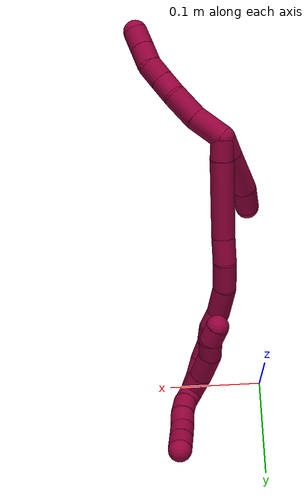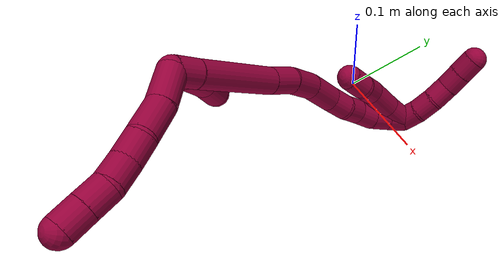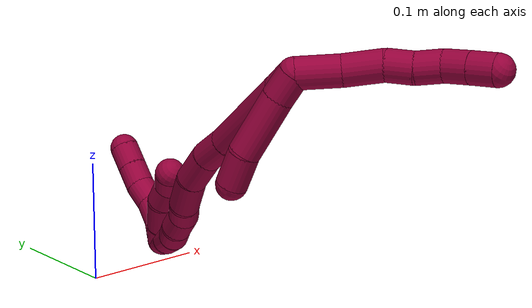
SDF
<sdf version="1.7">
 <world name="default">
  <model name="8">
   <static>0</static>
   <link name="8">
    <collision name="collision-cylinder-e_1_2_8">
     <pose>0.010857 -0.010794 0.008256 0.917858 0.674126 0.342911</pose>
     <geometry><cylinder><radius>0.0125</radius><length>0.034787</length></cylinder></geometry>
     <surface>
      <friction><ode><mu>1.16</mu><mu2>1.16</mu2><slip1>0</slip1><slip2>0</slip2></ode></friction>
      <contact><ode><kp>1e+06</kp><kd>1</kd><max_vel>0</max_vel><min_depth>0.001</min_depth></ode></contact>
     </surface>
    </collision>
    <visual name="visual-cylinder-e_1_2_8">
     <pose>0.010857 -0.010794 0.008256 0.917858 0.674126 0.342911</pose>
     <geometry><cylinder><radius>0.0125</radius><length>0.034787</length></cylinder></geometry>
     <material><ambient>0.584314 0 0.227451 1</ambient></material>
    </visual>
    <collision name="collision-cylinder-e_2_8_9">
     <pose>0.029749 -0.030881 0.02639 0.754901 0.534785 0.216374</pose>
     <geometry><cylinder><radius>0.0125</radius><length>0.031528</length></cylinder></geometry>
     <surface>
      <friction><ode><mu>1.16</mu><mu2>1.16</mu2><slip1>0</slip1><slip2>0</slip2></ode></friction>
      <contact><ode><kp>1e+06</kp><kd>1</kd><max_vel>0</max_vel><min_depth>0.001</min_depth></ode></contact>
     </surface>
    </collision>
    <visual name="visual-cylinder-e_2_8_9">
     <pose>0.029749 -0.030881 0.02639 0.754901 0.534785 0.216374</pose>
     <geometry><cylinder><radius>0.0125</radius><length>0.031528</length></cylinder></geometry>
     <material><ambient>0.584314 0 0.227451 1</ambient></material>
    </visual>
    <collision name="collision-cylinder-e_3_9_10">
     <pose>0.041706 -0.048366 0.042127 0.949953 0.371402 0.192619</pose>
     <geometry><cylinder><radius>0.0125</radius><length>0.021616</length></cylinder></geometry>
     <surface>
      <friction><ode><mu>1.16</mu><mu2>1.16</mu2><slip1>0</slip1><slip2>0</slip2></ode></friction>
      <contact><ode><kp>1e+06</kp><kd>1</kd><max_vel>0</max_vel><min_depth>0.001</min_depth></ode></contact>
     </surface>
    </collision>
    <visual name="visual-cylinder-e_3_9_10">
     <pose>0.041706 -0.048366 0.042127 0.949953 0.371402 0.192619</pose>
     <geometry><cylinder><radius>0.0125</radius><length>0.021616</length></cylinder></geometry>
     <material><ambient>0.584314 0 0.227451 1</ambient></material>
    </visual>
    <collision name="collision-cylinder-e_4_10_11">
     <pose>0.05031 -0.063257 0.054842 0.773747 0.454309 0.187785</pose>
     <geometry><cylinder><radius>0.0125</radius><length>0.021337</length></cylinder></geometry>
     <surface>
      <friction><ode><mu>1.16</mu><mu2>1.16</mu2><slip1>0</slip1><slip2>0</slip2></ode></friction>
      <contact><ode><kp>1e+06</kp><kd>1</kd><max_vel>0</max_vel><min_depth>0.001</min_depth></ode></contact>
     </surface>
    </collision>
    <visual name="visual-cylinder-e_4_10_11">
     <pose>0.05031 -0.063257 0.054842 0.773747 0.454309 0.187785</pose>
     <geometry><cylinder><radius>0.0125</radius><length>0.021337</length></cylinder></geometry>
     <material><ambient>0.584314 0 0.227451 1</ambient></material>
    </visual>
    <collision name="collision-cylinder-e_5_11_12">
     <pose>0.056479 -0.077172 0.068746 0.797298 0.146419 0.061763</pose>
     <geometry><cylinder><radius>0.0125</radius><length>0.02039</length></cylinder></geometry>
     <surface>
      <friction><ode><mu>1.16</mu><mu2>1.16</mu2><slip1>0</slip1><slip2>0</slip2></ode></friction>
      <contact><ode><kp>1e+06</kp><kd>1</kd><max_vel>0</max_vel><min_depth>0.001</min_depth></ode></contact>
     </surface>
    </collision>
    <visual name="visual-cylinder-e_5_11_12">
     <pose>0.056479 -0.077172 0.068746 0.797298 0.146419 0.061763</pose>
     <geometry><cylinder><radius>0.0125</radius><length>0.02039</length></cylinder></geometry>
     <material><ambient>0.584314 0 0.227451 1</ambient></material>
    </visual>
    <collision name="collision-cylinder-e_6_12_6">
     <pose>0.059422 -0.091712 0.082698 0.814697 0.143598 0.062047</pose>
     <geometry><cylinder><radius>0.0125</radius><length>0.020342</length></cylinder></geometry>
     <surface>
      <friction><ode><mu>1.16</mu><mu2>1.16</mu2><slip1>0</slip1><slip2>0</slip2></ode></friction>
      <contact><ode><kp>1e+06</kp><kd>1</kd><max_vel>0</max_vel><min_depth>0.001</min_depth></ode></contact>
     </surface>
    </collision>
    <visual name="visual-cylinder-e_6_12_6">
     <pose>0.059422 -0.091712 0.082698 0.814697 0.143598 0.062047</pose>
     <geometry><cylinder><radius>0.0125</radius><length>0.020342</length></cylinder></geometry>
     <material><ambient>0.584314 0 0.227451 1</ambient></material>
    </visual>
    <collision name="collision-cylinder-e_1_2_13">
     <pose>-0.004419 -0.00191 -0.010061 2.95402 -0.407339 -2.28687</pose>
     <geometry><cylinder><radius>0.0125</radius><length>0.022307</length></cylinder></geometry>
     <surface>
      <friction><ode><mu>1.16</mu><mu2>1.16</mu2><slip1>0</slip1><slip2>0</slip2></ode></friction>
      <contact><ode><kp>1e+06</kp><kd>1</kd><max_vel>0</max_vel><min_depth>0.001</min_depth></ode></contact>
     </surface>
    </collision>
    <visual name="visual-cylinder-e_1_2_13">
     <pose>-0.004419 -0.00191 -0.010061 2.95402 -0.407339 -2.28687</pose>
     <geometry><cylinder><radius>0.0125</radius><length>0.022307</length></cylinder></geometry>
     <material><ambient>0.584314 0 0.227451 1</ambient></material>
    </visual>
    <collision name="collision-cylinder-e_2_13_14">
     <pose>-0.01945 -0.009376 -0.041883 2.89156 -0.441426 -2.12045</pose>
     <geometry><cylinder><radius>0.0125</radius><length>0.049681</length></cylinder></geometry>
     <surface>
      <friction><ode><mu>1.16</mu><mu2>1.16</mu2><slip1>0</slip1><slip2>0</slip2></ode></friction>
      <contact><ode><kp>1e+06</kp><kd>1</kd><max_vel>0</max_vel><min_depth>0.001</min_depth></ode></contact>
     </surface>
    </collision>
    <visual name="visual-cylinder-e_2_13_14">
     <pose>-0.01945 -0.009376 -0.041883 2.89156 -0.441426 -2.12045</pose>
     <geometry><cylinder><radius>0.0125</radius><length>0.049681</length></cylinder></geometry>
     <material><ambient>0.584314 0 0.227451 1</ambient></material>
    </visual>
    <collision name="collision-cylinder-e_3_14_5">
     <pose>-0.033643 -0.019553 -0.076373 2.79348 -0.258549 -1.27327</pose>
     <geometry><cylinder><radius>0.0125</radius><length>0.028012</length></cylinder></geometry>
     <surface>
      <friction><ode><mu>1.16</mu><mu2>1.16</mu2><slip1>0</slip1><slip2>0</slip2></ode></friction>
      <contact><ode><kp>1e+06</kp><kd>1</kd><max_vel>0</max_vel><min_depth>0.001</min_depth></ode></contact>
     </surface>
    </collision>
    <visual name="visual-cylinder-e_3_14_5">
     <pose>-0.033643 -0.019553 -0.076373 2.79348 -0.258549 -1.27327</pose>
     <geometry><cylinder><radius>0.0125</radius><length>0.028012</length></cylinder></geometry>
     <material><ambient>0.584314 0 0.227451 1</ambient></material>
    </visual>
    <collision name="collision-cylinder-e_1_2_15">
     <pose>0.000775 0.000821 -0.011309 -3.06908 0.068239 -1.51011</pose>
     <geometry><cylinder><radius>0.0125</radius><length>0.02273</length></cylinder></geometry>
     <surface>
      <friction><ode><mu>1.16</mu><mu2>1.16</mu2><slip1>0</slip1><slip2>0</slip2></ode></friction>
      <contact><ode><kp>1e+06</kp><kd>1</kd><max_vel>0</max_vel><min_depth>0.001</min_depth></ode></contact>
     </surface>
    </collision>
    <visual name="visual-cylinder-e_1_2_15">
     <pose>0.000775 0.000821 -0.011309 -3.06908 0.068239 -1.51011</pose>
     <geometry><cylinder><radius>0.0125</radius><length>0.02273</length></cylinder></geometry>
     <material><ambient>0.584314 0 0.227451 1</ambient></material>
    </visual>
    <collision name="collision-cylinder-e_2_15_16">
     <pose>0.001657 0.00498 -0.064113 -3.06134 0.00257 -0.064001</pose>
     <geometry><cylinder><radius>0.0125</radius><length>0.083259</length></cylinder></geometry>
     <surface>
      <friction><ode><mu>1.16</mu><mu2>1.16</mu2><slip1>0</slip1><slip2>0</slip2></ode></friction>
      <contact><ode><kp>1e+06</kp><kd>1</kd><max_vel>0</max_vel><min_depth>0.001</min_depth></ode></contact>
     </surface>
    </collision>
    <visual name="visual-cylinder-e_2_15_16">
     <pose>0.001657 0.00498 -0.064113 -3.06134 0.00257 -0.064001</pose>
     <geometry><cylinder><radius>0.0125</radius><length>0.083259</length></cylinder></geometry>
     <material><ambient>0.584314 0 0.227451 1</ambient></material>
    </visual>
    <collision name="collision-cylinder-e_3_16_17">
     <pose>0.001641 0.010525 -0.119254 -2.9812 -0.008926 0.110948</pose>
     <geometry><cylinder><radius>0.0125</radius><length>0.027647</length></cylinder></geometry>
     <surface>
      <friction><ode><mu>1.16</mu><mu2>1.16</mu2><slip1>0</slip1><slip2>0</slip2></ode></friction>
      <contact><ode><kp>1e+06</kp><kd>1</kd><max_vel>0</max_vel><min_depth>0.001</min_depth></ode></contact>
     </surface>
    </collision>
    <visual name="visual-cylinder-e_3_16_17">
     <pose>0.001641 0.010525 -0.119254 -2.9812 -0.008926 0.110948</pose>
     <geometry><cylinder><radius>0.0125</radius><length>0.027647</length></cylinder></geometry>
     <material><ambient>0.584314 0 0.227451 1</ambient></material>
    </visual>
    <collision name="collision-cylinder-e_4_17_18">
     <pose>0.001155 0.011947 -0.148458 3.09113 -0.023236 -0.862912</pose>
     <geometry><cylinder><radius>0.0125</radius><length>0.031165</length></cylinder></geometry>
     <surface>
      <friction><ode><mu>1.16</mu><mu2>1.16</mu2><slip1>0</slip1><slip2>0</slip2></ode></friction>
      <contact><ode><kp>1e+06</kp><kd>1</kd><max_vel>0</max_vel><min_depth>0.001</min_depth></ode></contact>
     </surface>
    </collision>
    <visual name="visual-cylinder-e_4_17_18">
     <pose>0.001155 0.011947 -0.148458 3.09113 -0.023236 -0.862912</pose>
     <geometry><cylinder><radius>0.0125</radius><length>0.031165</length></cylinder></geometry>
     <material><ambient>0.584314 0 0.227451 1</ambient></material>
    </visual>
    <collision name="collision-cylinder-e_5_18_19">
     <pose>0.002951 0.007578 -0.180291 2.92492 0.128768 1.07021</pose>
     <geometry><cylinder><radius>0.0125</radius><length>0.033608</length></cylinder></geometry>
     <surface>
      <friction><ode><mu>1.16</mu><mu2>1.16</mu2><slip1>0</slip1><slip2>0</slip2></ode></friction>
      <contact><ode><kp>1e+06</kp><kd>1</kd><max_vel>0</max_vel><min_depth>0.001</min_depth></ode></contact>
     </surface>
    </collision>
    <visual name="visual-cylinder-e_5_18_19">
     <pose>0.002951 0.007578 -0.180291 2.92492 0.128768 1.07021</pose>
     <geometry><cylinder><radius>0.0125</radius><length>0.033608</length></cylinder></geometry>
     <material><ambient>0.584314 0 0.227451 1</ambient></material>
    </visual>
    <collision name="collision-cylinder-e_6_19_20">
     <pose>0.008876 0.002147 -0.206151 2.95106 0.368326 2.19364</pose>
     <geometry><cylinder><radius>0.0125</radius><length>0.020925</length></cylinder></geometry>
     <surface>
      <friction><ode><mu>1.16</mu><mu2>1.16</mu2><slip1>0</slip1><slip2>0</slip2></ode></friction>
      <contact><ode><kp>1e+06</kp><kd>1</kd><max_vel>0</max_vel><min_depth>0.001</min_depth></ode></contact>
     </surface>
    </collision>
    <visual name="visual-cylinder-e_6_19_20">
     <pose>0.008876 0.002147 -0.206151 2.95106 0.368326 2.19364</pose>
     <geometry><cylinder><radius>0.0125</radius><length>0.020925</length></cylinder></geometry>
     <material><ambient>0.584314 0 0.227451 1</ambient></material>
    </visual>
    <collision name="collision-cylinder-e_7_20_21">
     <pose>0.013688 -0.00034 -0.225879 3.07871 0.102409 2.04076</pose>
     <geometry><cylinder><radius>0.0125</radius><length>0.020436</length></cylinder></geometry>
     <surface>
      <friction><ode><mu>1.16</mu><mu2>1.16</mu2><slip1>0</slip1><slip2>0</slip2></ode></friction>
      <contact><ode><kp>1e+06</kp><kd>1</kd><max_vel>0</max_vel><min_depth>0.001</min_depth></ode></contact>
     </surface>
    </collision>
    <visual name="visual-cylinder-e_7_20_21">
     <pose>0.013688 -0.00034 -0.225879 3.07871 0.102409 2.04076</pose>
     <geometry><cylinder><radius>0.0125</radius><length>0.020436</length></cylinder></geometry>
     <material><ambient>0.584314 0 0.227451 1</ambient></material>
    </visual>
    <collision name="collision-cylinder-e_8_21_22">
     <pose>0.018154 -0.001542 -0.245506 3.08223 0.345762 2.80479</pose>
     <geometry><cylinder><radius>0.0125</radius><length>0.020192</length></cylinder></geometry>
     <surface>
      <friction><ode><mu>1.16</mu><mu2>1.16</mu2><slip1>0</slip1><slip2>0</slip2></ode></friction>
      <contact><ode><kp>1e+06</kp><kd>1</kd><max_vel>0</max_vel><min_depth>0.001</min_depth></ode></contact>
     </surface>
    </collision>
    <visual name="visual-cylinder-e_8_21_22">
     <pose>0.018154 -0.001542 -0.245506 3.08223 0.345762 2.80479</pose>
     <geometry><cylinder><radius>0.0125</radius><length>0.020192</length></cylinder></geometry>
     <material><ambient>0.584314 0 0.227451 1</ambient></material>
    </visual>
    <collision name="collision-cylinder-e_9_22_23">
     <pose>0.025007 -0.000242 -0.2642 -2.94196 0.350078 -2.11106</pose>
     <geometry><cylinder><radius>0.0125</radius><length>0.020011</length></cylinder></geometry>
     <surface>
      <friction><ode><mu>1.16</mu><mu2>1.16</mu2><slip1>0</slip1><slip2>0</slip2></ode></friction>
      <contact><ode><kp>1e+06</kp><kd>1</kd><max_vel>0</max_vel><min_depth>0.001</min_depth></ode></contact>
     </surface>
    </collision>
    <visual name="visual-cylinder-e_9_22_23">
     <pose>0.025007 -0.000242 -0.2642 -2.94196 0.350078 -2.11106</pose>
     <geometry><cylinder><radius>0.0125</radius><length>0.020011</length></cylinder></geometry>
     <material><ambient>0.584314 0 0.227451 1</ambient></material>
    </visual>
    <collision name="collision-cylinder-e_10_23_1">
     <pose>0.032981 0.004123 -0.281978 -2.85748 0.470782 -2.06617</pose>
     <geometry><cylinder><radius>0.0125</radius><length>0.020027</length></cylinder></geometry>
     <surface>
      <friction><ode><mu>1.16</mu><mu2>1.16</mu2><slip1>0</slip1><slip2>0</slip2></ode></friction>
      <contact><ode><kp>1e+06</kp><kd>1</kd><max_vel>0</max_vel><min_depth>0.001</min_depth></ode></contact>
     </surface>
    </collision>
    <visual name="visual-cylinder-e_10_23_1">
     <pose>0.032981 0.004123 -0.281978 -2.85748 0.470782 -2.06617</pose>
     <geometry><cylinder><radius>0.0125</radius><length>0.020027</length></cylinder></geometry>
     <material><ambient>0.584314 0 0.227451 1</ambient></material>
    </visual>
    <collision name="collision-cylinder-e_1_1_24">
     <pose>0.033028 0.010524 -0.277858 -0.298228 -0.326529 0.049485</pose>
     <geometry><cylinder><radius>0.0125</radius><length>0.028024</length></cylinder></geometry>
     <surface>
      <friction><ode><mu>1.16</mu><mu2>1.16</mu2><slip1>0</slip1><slip2>0</slip2></ode></friction>
      <contact><ode><kp>1e+06</kp><kd>1</kd><max_vel>0</max_vel><min_depth>0.001</min_depth></ode></contact>
     </surface>
    </collision>
    <visual name="visual-cylinder-e_1_1_24">
     <pose>0.033028 0.010524 -0.277858 -0.298228 -0.326529 0.049485</pose>
     <geometry><cylinder><radius>0.0125</radius><length>0.028024</length></cylinder></geometry>
     <material><ambient>0.584314 0 0.227451 1</ambient></material>
    </visual>
    <collision name="collision-cylinder-e_2_24_25">
     <pose>0.025039 0.019285 -0.250432 -0.318544 -0.221459 0.035716</pose>
     <geometry><cylinder><radius>0.0125</radius><length>0.031819</length></cylinder></geometry>
     <surface>
      <friction><ode><mu>1.16</mu><mu2>1.16</mu2><slip1>0</slip1><slip2>0</slip2></ode></friction>
      <contact><ode><kp>1e+06</kp><kd>1</kd><max_vel>0</max_vel><min_depth>0.001</min_depth></ode></contact>
     </surface>
    </collision>
    <visual name="visual-cylinder-e_2_24_25">
     <pose>0.025039 0.019285 -0.250432 -0.318544 -0.221459 0.035716</pose>
     <geometry><cylinder><radius>0.0125</radius><length>0.031819</length></cylinder></geometry>
     <material><ambient>0.584314 0 0.227451 1</ambient></material>
    </visual>
    <collision name="collision-cylinder-e_3_25_26">
     <pose>0.02183 0.025827 -0.225791 -0.16819 0.028383 -0.002393</pose>
     <geometry><cylinder><radius>0.0125</radius><length>0.020095</length></cylinder></geometry>
     <surface>
      <friction><ode><mu>1.16</mu><mu2>1.16</mu2><slip1>0</slip1><slip2>0</slip2></ode></friction>
      <contact><ode><kp>1e+06</kp><kd>1</kd><max_vel>0</max_vel><min_depth>0.001</min_depth></ode></contact>
     </surface>
    </collision>
    <visual name="visual-cylinder-e_3_25_26">
     <pose>0.02183 0.025827 -0.225791 -0.16819 0.028383 -0.002393</pose>
     <geometry><cylinder><radius>0.0125</radius><length>0.020095</length></cylinder></geometry>
     <material><ambient>0.584314 0 0.227451 1</ambient></material>
    </visual>
    <collision name="collision-cylinder-e_4_26_4">
     <pose>0.019107 0.029756 -0.206587 -0.23718 -0.304573 0.036569</pose>
     <geometry><cylinder><radius>0.0125</radius><length>0.020062</length></cylinder></geometry>
     <surface>
      <friction><ode><mu>1.16</mu><mu2>1.16</mu2><slip1>0</slip1><slip2>0</slip2></ode></friction>
      <contact><ode><kp>1e+06</kp><kd>1</kd><max_vel>0</max_vel><min_depth>0.001</min_depth></ode></contact>
     </surface>
    </collision>
    <visual name="visual-cylinder-e_4_26_4">
     <pose>0.019107 0.029756 -0.206587 -0.23718 -0.304573 0.036569</pose>
     <geometry><cylinder><radius>0.0125</radius><length>0.020062</length></cylinder></geometry>
     <material><ambient>0.584314 0 0.227451 1</ambient></material>
    </visual>
    <collision name="collision-cylinder-e_1_1_27">
     <pose>0.043616 0.01455 -0.290801 -1.60321 0.655211 -0.67522</pose>
     <geometry><cylinder><radius>0.0125</radius><length>0.02</length></cylinder></geometry>
     <surface>
      <friction><ode><mu>1.16</mu><mu2>1.16</mu2><slip1>0</slip1><slip2>0</slip2></ode></friction>
      <contact><ode><kp>1e+06</kp><kd>1</kd><max_vel>0</max_vel><min_depth>0.001</min_depth></ode></contact>
     </surface>
    </collision>
    <visual name="visual-cylinder-e_1_1_27">
     <pose>0.043616 0.01455 -0.290801 -1.60321 0.655211 -0.67522</pose>
     <geometry><cylinder><radius>0.0125</radius><length>0.02</length></cylinder></geometry>
     <material><ambient>0.584314 0 0.227451 1</ambient></material>
    </visual>
    <collision name="collision-cylinder-e_2_27_28">
     <pose>0.054215 0.031353 -0.291993 -1.67568 0.467383 -0.516998</pose>
     <geometry><cylinder><radius>0.0125</radius><length>0.02</length></cylinder></geometry>
     <surface>
      <friction><ode><mu>1.16</mu><mu2>1.16</mu2><slip1>0</slip1><slip2>0</slip2></ode></friction>
      <contact><ode><kp>1e+06</kp><kd>1</kd><max_vel>0</max_vel><min_depth>0.001</min_depth></ode></contact>
     </surface>
    </collision>
    <visual name="visual-cylinder-e_2_27_28">
     <pose>0.054215 0.031353 -0.291993 -1.67568 0.467383 -0.516998</pose>
     <geometry><cylinder><radius>0.0125</radius><length>0.02</length></cylinder></geometry>
     <material><ambient>0.584314 0 0.227451 1</ambient></material>
    </visual>
    <collision name="collision-cylinder-e_3_28_29">
     <pose>0.061802 0.04953 -0.29494 -1.78395 0.313246 -0.386619</pose>
     <geometry><cylinder><radius>0.0125</radius><length>0.02</length></cylinder></geometry>
     <surface>
      <friction><ode><mu>1.16</mu><mu2>1.16</mu2><slip1>0</slip1><slip2>0</slip2></ode></friction>
      <contact><ode><kp>1e+06</kp><kd>1</kd><max_vel>0</max_vel><min_depth>0.001</min_depth></ode></contact>
     </surface>
    </collision>
    <visual name="visual-cylinder-e_3_28_29">
     <pose>0.061802 0.04953 -0.29494 -1.78395 0.313246 -0.386619</pose>
     <geometry><cylinder><radius>0.0125</radius><length>0.02</length></cylinder></geometry>
     <material><ambient>0.584314 0 0.227451 1</ambient></material>
    </visual>
    <collision name="collision-cylinder-e_4_29_30">
     <pose>0.06851 0.068145 -0.296777 -1.55194 0.371212 -0.364431</pose>
     <geometry><cylinder><radius>0.0125</radius><length>0.02</length></cylinder></geometry>
     <surface>
      <friction><ode><mu>1.16</mu><mu2>1.16</mu2><slip1>0</slip1><slip2>0</slip2></ode></friction>
      <contact><ode><kp>1e+06</kp><kd>1</kd><max_vel>0</max_vel><min_depth>0.001</min_depth></ode></contact>
     </surface>
    </collision>
    <visual name="visual-cylinder-e_4_29_30">
     <pose>0.06851 0.068145 -0.296777 -1.55194 0.371212 -0.364431</pose>
     <geometry><cylinder><radius>0.0125</radius><length>0.02</length></cylinder></geometry>
     <material><ambient>0.584314 0 0.227451 1</ambient></material>
    </visual>
    <collision name="collision-cylinder-e_5_30_3">
     <pose>0.075779 0.086774 -0.296419 -1.55128 0.372629 -0.365587</pose>
     <geometry><cylinder><radius>0.0125</radius><length>0.02</length></cylinder></geometry>
     <surface>
      <friction><ode><mu>1.16</mu><mu2>1.16</mu2><slip1>0</slip1><slip2>0</slip2></ode></friction>
      <contact><ode><kp>1e+06</kp><kd>1</kd><max_vel>0</max_vel><min_depth>0.001</min_depth></ode></contact>
     </surface>
    </collision>
    <visual name="visual-cylinder-e_5_30_3">
     <pose>0.075779 0.086774 -0.296419 -1.55128 0.372629 -0.365587</pose>
     <geometry><cylinder><radius>0.0125</radius><length>0.02</length></cylinder></geometry>
     <material><ambient>0.584314 0 0.227451 1</ambient></material>
    </visual>
    <collision name="collision-sphere-3">
     <pose>0.079419 0.096086 -0.296237 0 -0 0</pose>
     <geometry><sphere><radius>0.0125</radius></sphere></geometry>
     <surface>
      <friction><ode><mu>1.16</mu><mu2>1.16</mu2><slip1>0</slip1><slip2>0</slip2></ode></friction>
      <contact><ode><kp>1e+06</kp><kd>1</kd><max_vel>0</max_vel><min_depth>0.001</min_depth></ode></contact>
     </surface>
    </collision>
    <visual name="visual-sphere-3">
     <pose>0.079419 0.096086 -0.296237 0 -0 0</pose>
     <geometry><sphere><radius>0.0125</radius></sphere></geometry>
     <material><ambient>0.584314 0 0.227451 1</ambient></material>
    </visual>
    <collision name="collision-sphere-30">
     <pose>0.072138 0.077462 -0.296601 0 -0 0</pose>
     <geometry><sphere><radius>0.0125</radius></sphere></geometry>
     <surface>
      <friction><ode><mu>1.16</mu><mu2>1.16</mu2><slip1>0</slip1><slip2>0</slip2></ode></friction>
      <contact><ode><kp>1e+06</kp><kd>1</kd><max_vel>0</max_vel><min_depth>0.001</min_depth></ode></contact>
     </surface>
    </collision>
    <visual name="visual-sphere-30">
     <pose>0.072138 0.077462 -0.296601 0 -0 0</pose>
     <geometry><sphere><radius>0.0125</radius></sphere></geometry>
     <material><ambient>0.584314 0 0.227451 1</ambient></material>
    </visual>
    <collision name="collision-sphere-29">
     <pose>0.064883 0.058828 -0.296952 0 -0 0</pose>
     <geometry><sphere><radius>0.0125</radius></sphere></geometry>
     <surface>
      <friction><ode><mu>1.16</mu><mu2>1.16</mu2><slip1>0</slip1><slip2>0</slip2></ode></friction>
      <contact><ode><kp>1e+06</kp><kd>1</kd><max_vel>0</max_vel><min_depth>0.001</min_depth></ode></contact>
     </surface>
    </collision>
    <visual name="visual-sphere-29">
     <pose>0.064883 0.058828 -0.296952 0 -0 0</pose>
     <geometry><sphere><radius>0.0125</radius></sphere></geometry>
     <material><ambient>0.584314 0 0.227451 1</ambient></material>
    </visual>
    <collision name="collision-sphere-28">
     <pose>0.05872 0.040232 -0.292927 0 -0 0</pose>
     <geometry><sphere><radius>0.0125</radius></sphere></geometry>
     <surface>
      <friction><ode><mu>1.16</mu><mu2>1.16</mu2><slip1>0</slip1><slip2>0</slip2></ode></friction>
      <contact><ode><kp>1e+06</kp><kd>1</kd><max_vel>0</max_vel><min_depth>0.001</min_depth></ode></contact>
     </surface>
    </collision>
    <visual name="visual-sphere-28">
     <pose>0.05872 0.040232 -0.292927 0 -0 0</pose>
     <geometry><sphere><radius>0.0125</radius></sphere></geometry>
     <material><ambient>0.584314 0 0.227451 1</ambient></material>
    </visual>
    <collision name="collision-sphere-27">
     <pose>0.049709 0.022475 -0.291058 0 -0 0</pose>
     <geometry><sphere><radius>0.0125</radius></sphere></geometry>
     <surface>
      <friction><ode><mu>1.16</mu><mu2>1.16</mu2><slip1>0</slip1><slip2>0</slip2></ode></friction>
      <contact><ode><kp>1e+06</kp><kd>1</kd><max_vel>0</max_vel><min_depth>0.001</min_depth></ode></contact>
     </surface>
    </collision>
    <visual name="visual-sphere-27">
     <pose>0.049709 0.022475 -0.291058 0 -0 0</pose>
     <geometry><sphere><radius>0.0125</radius></sphere></geometry>
     <material><ambient>0.584314 0 0.227451 1</ambient></material>
    </visual>
    <collision name="collision-sphere-4">
     <pose>0.016098 0.032005 -0.197286 0 -0 0</pose>
     <geometry><sphere><radius>0.0125</radius></sphere></geometry>
     <surface>
      <friction><ode><mu>1.16</mu><mu2>1.16</mu2><slip1>0</slip1><slip2>0</slip2></ode></friction>
      <contact><ode><kp>1e+06</kp><kd>1</kd><max_vel>0</max_vel><min_depth>0.001</min_depth></ode></contact>
     </surface>
    </collision>
    <visual name="visual-sphere-4">
     <pose>0.016098 0.032005 -0.197286 0 -0 0</pose>
     <geometry><sphere><radius>0.0125</radius></sphere></geometry>
     <material><ambient>0.584314 0 0.227451 1</ambient></material>
    </visual>
    <collision name="collision-sphere-26">
     <pose>0.022115 0.027508 -0.215889 0 -0 0</pose>
     <geometry><sphere><radius>0.0125</radius></sphere></geometry>
     <surface>
      <friction><ode><mu>1.16</mu><mu2>1.16</mu2><slip1>0</slip1><slip2>0</slip2></ode></friction>
      <contact><ode><kp>1e+06</kp><kd>1</kd><max_vel>0</max_vel><min_depth>0.001</min_depth></ode></contact>
     </surface>
    </collision>
    <visual name="visual-sphere-26">
     <pose>0.022115 0.027508 -0.215889 0 -0 0</pose>
     <geometry><sphere><radius>0.0125</radius></sphere></geometry>
     <material><ambient>0.584314 0 0.227451 1</ambient></material>
    </visual>
    <collision name="collision-sphere-25">
     <pose>0.021544 0.024145 -0.235692 0 -0 0</pose>
     <geometry><sphere><radius>0.0125</radius></sphere></geometry>
     <surface>
      <friction><ode><mu>1.16</mu><mu2>1.16</mu2><slip1>0</slip1><slip2>0</slip2></ode></friction>
      <contact><ode><kp>1e+06</kp><kd>1</kd><max_vel>0</max_vel><min_depth>0.001</min_depth></ode></contact>
     </surface>
    </collision>
    <visual name="visual-sphere-25">
     <pose>0.021544 0.024145 -0.235692 0 -0 0</pose>
     <geometry><sphere><radius>0.0125</radius></sphere></geometry>
     <material><ambient>0.584314 0 0.227451 1</ambient></material>
    </visual>
    <collision name="collision-sphere-24">
     <pose>0.028533 0.014424 -0.265172 0 -0 0</pose>
     <geometry><sphere><radius>0.0125</radius></sphere></geometry>
     <surface>
      <friction><ode><mu>1.16</mu><mu2>1.16</mu2><slip1>0</slip1><slip2>0</slip2></ode></friction>
      <contact><ode><kp>1e+06</kp><kd>1</kd><max_vel>0</max_vel><min_depth>0.001</min_depth></ode></contact>
     </surface>
    </collision>
    <visual name="visual-sphere-24">
     <pose>0.028533 0.014424 -0.265172 0 -0 0</pose>
     <geometry><sphere><radius>0.0125</radius></sphere></geometry>
     <material><ambient>0.584314 0 0.227451 1</ambient></material>
    </visual>
    <collision name="collision-sphere-1">
     <pose>0.037522 0.006625 -0.290544 0 -0 0</pose>
     <geometry><sphere><radius>0.0125</radius></sphere></geometry>
     <surface>
      <friction><ode><mu>1.16</mu><mu2>1.16</mu2><slip1>0</slip1><slip2>0</slip2></ode></friction>
      <contact><ode><kp>1e+06</kp><kd>1</kd><max_vel>0</max_vel><min_depth>0.001</min_depth></ode></contact>
     </surface>
    </collision>
    <visual name="visual-sphere-1">
     <pose>0.037522 0.006625 -0.290544 0 -0 0</pose>
     <geometry><sphere><radius>0.0125</radius></sphere></geometry>
     <material><ambient>0.584314 0 0.227451 1</ambient></material>
    </visual>
    <collision name="collision-sphere-23">
     <pose>0.028439 0.001622 -0.273412 0 -0 0</pose>
     <geometry><sphere><radius>0.0125</radius></sphere></geometry>
     <surface>
      <friction><ode><mu>1.16</mu><mu2>1.16</mu2><slip1>0</slip1><slip2>0</slip2></ode></friction>
      <contact><ode><kp>1e+06</kp><kd>1</kd><max_vel>0</max_vel><min_depth>0.001</min_depth></ode></contact>
     </surface>
    </collision>
    <visual name="visual-sphere-23">
     <pose>0.028439 0.001622 -0.273412 0 -0 0</pose>
     <geometry><sphere><radius>0.0125</radius></sphere></geometry>
     <material><ambient>0.584314 0 0.227451 1</ambient></material>
    </visual>
    <collision name="collision-sphere-22">
     <pose>0.021576 -0.002106 -0.254988 0 -0 0</pose>
     <geometry><sphere><radius>0.0125</radius></sphere></geometry>
     <surface>
      <friction><ode><mu>1.16</mu><mu2>1.16</mu2><slip1>0</slip1><slip2>0</slip2></ode></friction>
      <contact><ode><kp>1e+06</kp><kd>1</kd><max_vel>0</max_vel><min_depth>0.001</min_depth></ode></contact>
     </surface>
    </collision>
    <visual name="visual-sphere-22">
     <pose>0.021576 -0.002106 -0.254988 0 -0 0</pose>
     <geometry><sphere><radius>0.0125</radius></sphere></geometry>
     <material><ambient>0.584314 0 0.227451 1</ambient></material>
    </visual>
    <collision name="collision-sphere-21">
     <pose>0.014732 -0.000979 -0.236024 0 -0 0</pose>
     <geometry><sphere><radius>0.0125</radius></sphere></geometry>
     <surface>
      <friction><ode><mu>1.16</mu><mu2>1.16</mu2><slip1>0</slip1><slip2>0</slip2></ode></friction>
      <contact><ode><kp>1e+06</kp><kd>1</kd><max_vel>0</max_vel><min_depth>0.001</min_depth></ode></contact>
     </surface>
    </collision>
    <visual name="visual-sphere-21">
     <pose>0.014732 -0.000979 -0.236024 0 -0 0</pose>
     <geometry><sphere><radius>0.0125</radius></sphere></geometry>
     <material><ambient>0.584314 0 0.227451 1</ambient></material>
    </visual>
    <collision name="collision-sphere-12">
     <pose>0.057966 -0.084388 0.075792 0 -0 0</pose>
     <geometry><sphere><radius>0.0125</radius></sphere></geometry>
     <surface>
      <friction><ode><mu>1.16</mu><mu2>1.16</mu2><slip1>0</slip1><slip2>0</slip2></ode></friction>
      <contact><ode><kp>1e+06</kp><kd>1</kd><max_vel>0</max_vel><min_depth>0.001</min_depth></ode></contact>
     </surface>
    </collision>
    <visual name="visual-sphere-12">
     <pose>0.057966 -0.084388 0.075792 0 -0 0</pose>
     <geometry><sphere><radius>0.0125</radius></sphere></geometry>
     <material><ambient>0.584314 0 0.227451 1</ambient></material>
    </visual>
    <collision name="collision-sphere-11">
     <pose>0.054992 -0.069956 0.061699 0 -0 0</pose>
     <geometry><sphere><radius>0.0125</radius></sphere></geometry>
     <surface>
      <friction><ode><mu>1.16</mu><mu2>1.16</mu2><slip1>0</slip1><slip2>0</slip2></ode></friction>
      <contact><ode><kp>1e+06</kp><kd>1</kd><max_vel>0</max_vel><min_depth>0.001</min_depth></ode></contact>
     </surface>
    </collision>
    <visual name="visual-sphere-11">
     <pose>0.054992 -0.069956 0.061699 0 -0 0</pose>
     <geometry><sphere><radius>0.0125</radius></sphere></geometry>
     <material><ambient>0.584314 0 0.227451 1</ambient></material>
    </visual>
    <collision name="collision-sphere-10">
     <pose>0.045628 -0.056558 0.047985 0 -0 0</pose>
     <geometry><sphere><radius>0.0125</radius></sphere></geometry>
     <surface>
      <friction><ode><mu>1.16</mu><mu2>1.16</mu2><slip1>0</slip1><slip2>0</slip2></ode></friction>
      <contact><ode><kp>1e+06</kp><kd>1</kd><max_vel>0</max_vel><min_depth>0.001</min_depth></ode></contact>
     </surface>
    </collision>
    <visual name="visual-sphere-10">
     <pose>0.045628 -0.056558 0.047985 0 -0 0</pose>
     <geometry><sphere><radius>0.0125</radius></sphere></geometry>
     <material><ambient>0.584314 0 0.227451 1</ambient></material>
    </visual>
    <collision name="collision-sphere-9">
     <pose>0.037783 -0.040175 0.036268 0 -0 0</pose>
     <geometry><sphere><radius>0.0125</radius></sphere></geometry>
     <surface>
      <friction><ode><mu>1.16</mu><mu2>1.16</mu2><slip1>0</slip1><slip2>0</slip2></ode></friction>
      <contact><ode><kp>1e+06</kp><kd>1</kd><max_vel>0</max_vel><min_depth>0.001</min_depth></ode></contact>
     </surface>
    </collision>
    <visual name="visual-sphere-9">
     <pose>0.037783 -0.040175 0.036268 0 -0 0</pose>
     <geometry><sphere><radius>0.0125</radius></sphere></geometry>
     <material><ambient>0.584314 0 0.227451 1</ambient></material>
    </visual>
    <collision name="collision-sphere-2">
     <geometry><sphere><radius>0.0125</radius></sphere></geometry>
     <surface>
      <friction><ode><mu>1.16</mu><mu2>1.16</mu2><slip1>0</slip1><slip2>0</slip2></ode></friction>
      <contact><ode><kp>1e+06</kp><kd>1</kd><max_vel>0</max_vel><min_depth>0.001</min_depth></ode></contact>
     </surface>
    </collision>
    <visual name="visual-sphere-2">
     <geometry><sphere><radius>0.0125</radius></sphere></geometry>
     <material><ambient>0.584314 0 0.227451 1</ambient></material>
    </visual>
    <collision name="collision-sphere-19">
     <pose>0.005109 0.003996 -0.196566 0 -0 0</pose>
     <geometry><sphere><radius>0.0125</radius></sphere></geometry>
     <surface>
      <friction><ode><mu>1.16</mu><mu2>1.16</mu2><slip1>0</slip1><slip2>0</slip2></ode></friction>
      <contact><ode><kp>1e+06</kp><kd>1</kd><max_vel>0</max_vel><min_depth>0.001</min_depth></ode></contact>
     </surface>
    </collision>
    <visual name="visual-sphere-19">
     <pose>0.005109 0.003996 -0.196566 0 -0 0</pose>
     <geometry><sphere><radius>0.0125</radius></sphere></geometry>
     <material><ambient>0.584314 0 0.227451 1</ambient></material>
    </visual>
    <collision name="collision-sphere-8">
     <pose>0.021715 -0.021587 0.016511 0 -0 0</pose>
     <geometry><sphere><radius>0.0125</radius></sphere></geometry>
     <surface>
      <friction><ode><mu>1.16</mu><mu2>1.16</mu2><slip1>0</slip1><slip2>0</slip2></ode></friction>
      <contact><ode><kp>1e+06</kp><kd>1</kd><max_vel>0</max_vel><min_depth>0.001</min_depth></ode></contact>
     </surface>
    </collision>
    <visual name="visual-sphere-8">
     <pose>0.021715 -0.021587 0.016511 0 -0 0</pose>
     <geometry><sphere><radius>0.0125</radius></sphere></geometry>
     <material><ambient>0.584314 0 0.227451 1</ambient></material>
    </visual>
    <collision name="collision-sphere-6">
     <pose>0.060877 -0.099035 0.089605 0 -0 0</pose>
     <geometry><sphere><radius>0.0125</radius></sphere></geometry>
     <surface>
      <friction><ode><mu>1.16</mu><mu2>1.16</mu2><slip1>0</slip1><slip2>0</slip2></ode></friction>
      <contact><ode><kp>1e+06</kp><kd>1</kd><max_vel>0</max_vel><min_depth>0.001</min_depth></ode></contact>
     </surface>
    </collision>
    <visual name="visual-sphere-6">
     <pose>0.060877 -0.099035 0.089605 0 -0 0</pose>
     <geometry><sphere><radius>0.0125</radius></sphere></geometry>
     <material><ambient>0.584314 0 0.227451 1</ambient></material>
    </visual>
    <collision name="collision-sphere-13">
     <pose>-0.008837 -0.003819 -0.020122 0 -0 0</pose>
     <geometry><sphere><radius>0.0125</radius></sphere></geometry>
     <surface>
      <friction><ode><mu>1.16</mu><mu2>1.16</mu2><slip1>0</slip1><slip2>0</slip2></ode></friction>
      <contact><ode><kp>1e+06</kp><kd>1</kd><max_vel>0</max_vel><min_depth>0.001</min_depth></ode></contact>
     </surface>
    </collision>
    <visual name="visual-sphere-13">
     <pose>-0.008837 -0.003819 -0.020122 0 -0 0</pose>
     <geometry><sphere><radius>0.0125</radius></sphere></geometry>
     <material><ambient>0.584314 0 0.227451 1</ambient></material>
    </visual>
    <collision name="collision-sphere-14">
     <pose>-0.030062 -0.014934 -0.063644 0 -0 0</pose>
     <geometry><sphere><radius>0.0125</radius></sphere></geometry>
     <surface>
      <friction><ode><mu>1.16</mu><mu2>1.16</mu2><slip1>0</slip1><slip2>0</slip2></ode></friction>
      <contact><ode><kp>1e+06</kp><kd>1</kd><max_vel>0</max_vel><min_depth>0.001</min_depth></ode></contact>
     </surface>
    </collision>
    <visual name="visual-sphere-14">
     <pose>-0.030062 -0.014934 -0.063644 0 -0 0</pose>
     <geometry><sphere><radius>0.0125</radius></sphere></geometry>
     <material><ambient>0.584314 0 0.227451 1</ambient></material>
    </visual>
    <collision name="collision-sphere-5">
     <pose>-0.037224 -0.024172 -0.089101 0 -0 0</pose>
     <geometry><sphere><radius>0.0125</radius></sphere></geometry>
     <surface>
      <friction><ode><mu>1.16</mu><mu2>1.16</mu2><slip1>0</slip1><slip2>0</slip2></ode></friction>
      <contact><ode><kp>1e+06</kp><kd>1</kd><max_vel>0</max_vel><min_depth>0.001</min_depth></ode></contact>
     </surface>
    </collision>
    <visual name="visual-sphere-5">
     <pose>-0.037224 -0.024172 -0.089101 0 -0 0</pose>
     <geometry><sphere><radius>0.0125</radius></sphere></geometry>
     <material><ambient>0.584314 0 0.227451 1</ambient></material>
    </visual>
    <collision name="collision-sphere-15">
     <pose>0.00155 0.001643 -0.022618 0 -0 0</pose>
     <geometry><sphere><radius>0.0125</radius></sphere></geometry>
     <surface>
      <friction><ode><mu>1.16</mu><mu2>1.16</mu2><slip1>0</slip1><slip2>0</slip2></ode></friction>
      <contact><ode><kp>1e+06</kp><kd>1</kd><max_vel>0</max_vel><min_depth>0.001</min_depth></ode></contact>
     </surface>
    </collision>
    <visual name="visual-sphere-15">
     <pose>0.00155 0.001643 -0.022618 0 -0 0</pose>
     <geometry><sphere><radius>0.0125</radius></sphere></geometry>
     <material><ambient>0.584314 0 0.227451 1</ambient></material>
    </visual>
    <collision name="collision-sphere-16">
     <pose>0.001764 0.008317 -0.105608 0 -0 0</pose>
     <geometry><sphere><radius>0.0125</radius></sphere></geometry>
     <surface>
      <friction><ode><mu>1.16</mu><mu2>1.16</mu2><slip1>0</slip1><slip2>0</slip2></ode></friction>
      <contact><ode><kp>1e+06</kp><kd>1</kd><max_vel>0</max_vel><min_depth>0.001</min_depth></ode></contact>
     </surface>
    </collision>
    <visual name="visual-sphere-16">
     <pose>0.001764 0.008317 -0.105608 0 -0 0</pose>
     <geometry><sphere><radius>0.0125</radius></sphere></geometry>
     <material><ambient>0.584314 0 0.227451 1</ambient></material>
    </visual>
    <collision name="collision-sphere-17">
     <pose>0.001517 0.012732 -0.132899 0 -0 0</pose>
     <geometry><sphere><radius>0.0125</radius></sphere></geometry>
     <surface>
      <friction><ode><mu>1.16</mu><mu2>1.16</mu2><slip1>0</slip1><slip2>0</slip2></ode></friction>
      <contact><ode><kp>1e+06</kp><kd>1</kd><max_vel>0</max_vel><min_depth>0.001</min_depth></ode></contact>
     </surface>
    </collision>
    <visual name="visual-sphere-17">
     <pose>0.001517 0.012732 -0.132899 0 -0 0</pose>
     <geometry><sphere><radius>0.0125</radius></sphere></geometry>
     <material><ambient>0.584314 0 0.227451 1</ambient></material>
    </visual>
    <collision name="collision-sphere-18">
     <pose>0.000793 0.011161 -0.164016 0 -0 0</pose>
     <geometry><sphere><radius>0.0125</radius></sphere></geometry>
     <surface>
      <friction><ode><mu>1.16</mu><mu2>1.16</mu2><slip1>0</slip1><slip2>0</slip2></ode></friction>
      <contact><ode><kp>1e+06</kp><kd>1</kd><max_vel>0</max_vel><min_depth>0.001</min_depth></ode></contact>
     </surface>
    </collision>
    <visual name="visual-sphere-18">
     <pose>0.000793 0.011161 -0.164016 0 -0 0</pose>
     <geometry><sphere><radius>0.0125</radius></sphere></geometry>
     <material><ambient>0.584314 0 0.227451 1</ambient></material>
    </visual>
    <collision name="collision-sphere-20">
     <pose>0.012643 0.000299 -0.215735 0 -0 0</pose>
     <geometry><sphere><radius>0.0125</radius></sphere></geometry>
     <surface>
      <friction><ode><mu>1.16</mu><mu2>1.16</mu2><slip1>0</slip1><slip2>0</slip2></ode></friction>
      <contact><ode><kp>1e+06</kp><kd>1</kd><max_vel>0</max_vel><min_depth>0.001</min_depth></ode></contact>
     </surface>
    </collision>
    <visual name="visual-sphere-20">
     <pose>0.012643 0.000299 -0.215735 0 -0 0</pose>
     <geometry><sphere><radius>0.0125</radius></sphere></geometry>
     <material><ambient>0.584314 0 0.227451 1</ambient></material>
    </visual>
    <inertial>
     <pose>0.019461 0.000304 -0.128554 0 -0 0</pose>
     <mass>0.75</mass>
     <inertia>
      <ixx>6.7e-05</ixx>
      <ixy>0</ixy>
      <ixz>0</ixz>
      <iyy>-4.1e-05</iyy>
      <iyz>0</iyz>
      <izz>-1.9e-05</izz>
     </inertia>
    </inertial>
   </link>
   <pose>0.034113 -0.20718 0.206716 0.758625 -0.227925 0.187903</pose>
  </model>
 </world>
</sdf>
